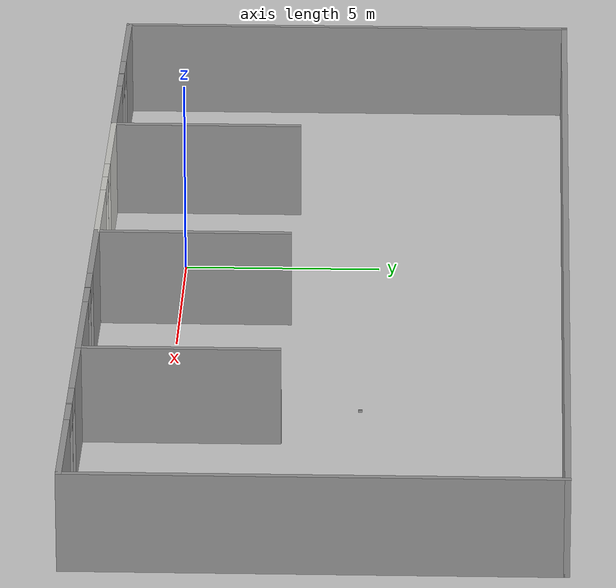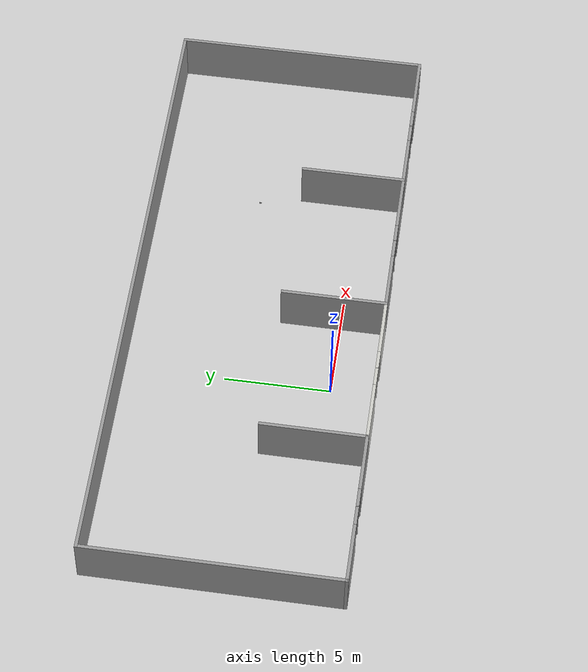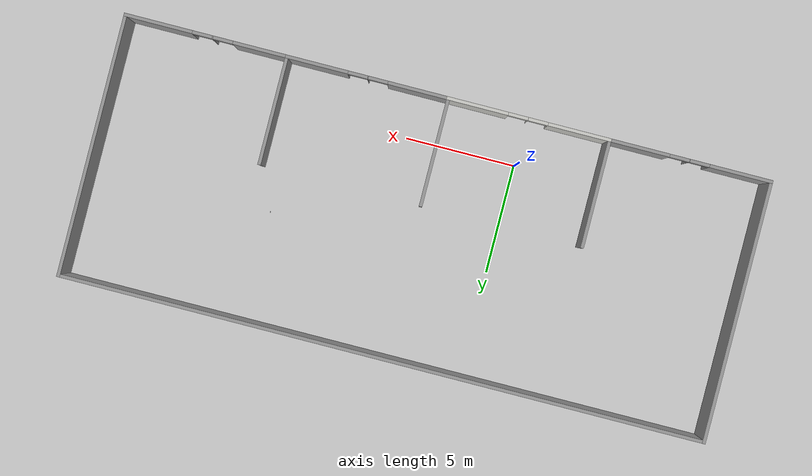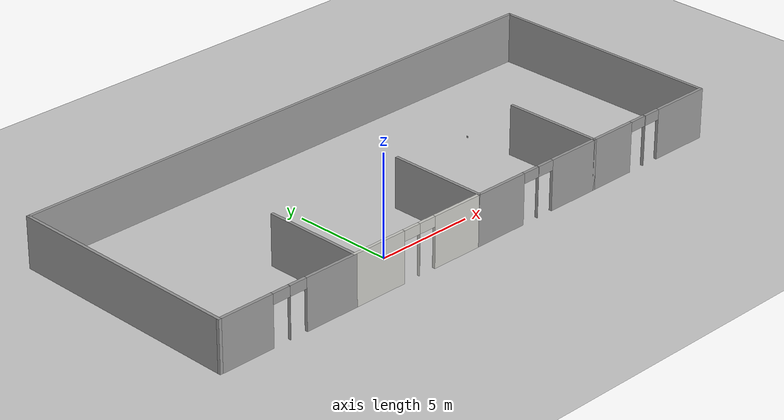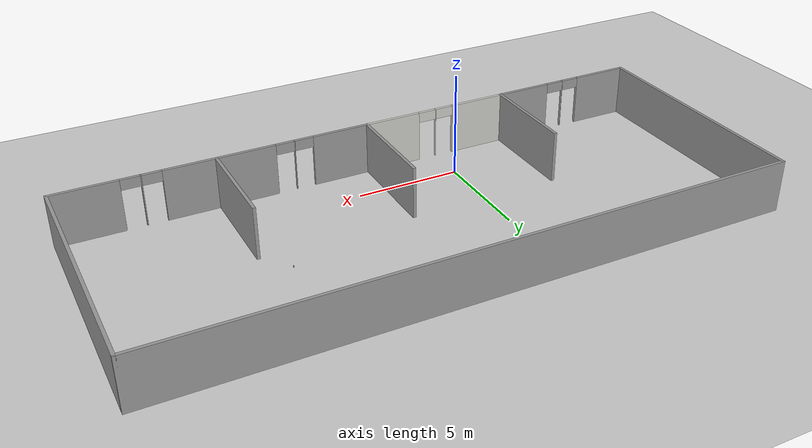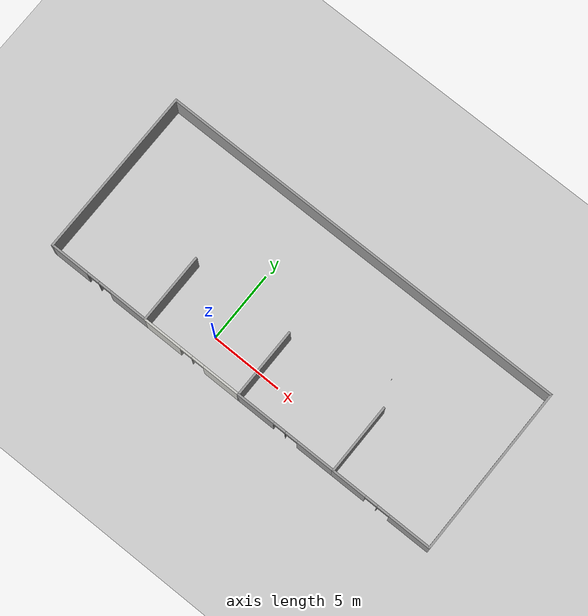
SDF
<sdf version="1.7">
 <world name="default">
  <light name="sun" type="directional">
   <pose>0 0 10 0 -0 0</pose>
   <diffuse>0.8 0.8 0.8 1</diffuse>
   <specular>0.2 0.2 0.2 1</specular>
   <attenuation>
    <range>1000</range>
    <constant>0.9</constant>
    <linear>0.01</linear>
    <quadratic>0.001</quadratic>
   </attenuation>
   <direction>-0.5 0.1 -0.9</direction>
   <spot><inner_angle>0</inner_angle><outer_angle>0</outer_angle><falloff>0</falloff></spot>
  </light>
  <model name="ground_plane">
   <static>1</static>
   <link name="link">
    <collision name="collision">
     <geometry><plane><normal>0 0 1</normal><size>100 100</size></plane></geometry>
     <surface><friction><ode><mu>100</mu><mu2>50</mu2></ode></friction></surface>
    </collision>
    <visual name="visual">
     <cast_shadows>0</cast_shadows>
     <geometry><plane><normal>0 0 1</normal><size>100 100</size></plane></geometry>
     <material>
      <script><uri>file://media/materials/scripts/gazebo.material</uri><name>Gazebo/Grey</name></script>
     </material>
    </visual>
   </link>
  </model>
  <gravity>0 0 -9.8</gravity>
  <magnetic_field>6e-06 2.3e-05 -4.2e-05</magnetic_field>
  <atmosphere type="adiabatic"/>
  <physics type="ode">
   <max_step_size>0.001</max_step_size>
   <real_time_factor>1</real_time_factor>
   <real_time_update_rate>1000</real_time_update_rate>
  </physics>
  <scene><ambient>0.4 0.4 0.4 1</ambient><background>0.7 0.7 0.7 1</background><shadows>1</shadows></scene>
  <spherical_coordinates>
   <surface_model>EARTH_WGS84</surface_model>
   <latitude_deg>0</latitude_deg>
   <longitude_deg>0</longitude_deg>
   <elevation>0</elevation>
   <heading_deg>0</heading_deg>
  </spherical_coordinates>
  <model name="gf_simulation">
   <pose>3.62768 3.86036 0 0 -0 0</pose>
   <link name="Wall_1">
    <pose>-3.675 -5.925 0 0 -0 0</pose>
    <visual name="Wall_1_Visual_0">
     <pose>-2.30795 0 1.25 0 -0 0</pose>
     <geometry><box><size>2.8841 0.15 2.5</size></box></geometry>
     <material>
      <script><uri>file://media/materials/scripts/gazebo.material</uri><name>Gazebo/CeilingTiled</name></script>
      <ambient>1 1 1 1</ambient>
     </material>
     <meta><layer>0</layer></meta>
    </visual>
    <collision name="Wall_1_Collision_0">
     <geometry><box><size>2.8841 0.15 2.5</size></box></geometry>
     <pose>-2.30795 0 1.25 0 -0 0</pose>
    </collision>
    <visual name="Wall_1_Visual_1">
     <pose>0.038466 0 1.25 0 -0 0</pose>
     <geometry><box><size>0.008729 0.15 2.5</size></box></geometry>
     <material>
      <script><uri>file://media/materials/scripts/gazebo.material</uri><name>Gazebo/CeilingTiled</name></script>
      <ambient>1 1 1 1</ambient>
     </material>
     <meta><layer>0</layer></meta>
    </visual>
    <collision name="Wall_1_Collision_1">
     <geometry><box><size>0.008729 0.15 2.5</size></box></geometry>
     <pose>0.038466 0 1.25 0 -0 0</pose>
    </collision>
    <visual name="Wall_1_Visual_2">
     <pose>2.34641 0 1.25 0 -0 0</pose>
     <geometry><box><size>2.80717 0.15 2.5</size></box></geometry>
     <material>
      <script><uri>file://media/materials/scripts/gazebo.material</uri><name>Gazebo/CeilingTiled</name></script>
      <ambient>1 1 1 1</ambient>
     </material>
     <meta><layer>0</layer></meta>
    </visual>
    <collision name="Wall_1_Collision_2">
     <geometry><box><size>2.80717 0.15 2.5</size></box></geometry>
     <pose>2.34641 0 1.25 0 -0 0</pose>
    </collision>
    <visual name="Wall_1_Visual_3">
     <pose>-0.415899 0 2.25 0 -0 0</pose>
     <geometry><box><size>0.9 0.15 0.5</size></box></geometry>
     <material>
      <script><uri>file://media/materials/scripts/gazebo.material</uri><name>Gazebo/CeilingTiled</name></script>
      <ambient>1 1 1 1</ambient>
     </material>
     <meta><layer>0</layer></meta>
    </visual>
    <collision name="Wall_1_Collision_3">
     <geometry><box><size>0.9 0.15 0.5</size></box></geometry>
     <pose>-0.415899 0 2.25 0 -0 0</pose>
    </collision>
    <visual name="Wall_1_Visual_4">
     <pose>0.49283 0 2.25 0 -0 0</pose>
     <geometry><box><size>0.9 0.15 0.5</size></box></geometry>
     <material>
      <script><uri>file://media/materials/scripts/gazebo.material</uri><name>Gazebo/CeilingTiled</name></script>
      <ambient>1 1 1 1</ambient>
     </material>
     <meta><layer>0</layer></meta>
    </visual>
    <collision name="Wall_1_Collision_4">
     <geometry><box><size>0.9 0.15 0.5</size></box></geometry>
     <pose>0.49283 0 2.25 0 -0 0</pose>
    </collision>
   </link>
   <link name="Wall_10">
    <pose>3.675 -5.925 0 0 -0 0</pose>
    <visual name="Wall_10_Visual_0">
     <pose>-2.33475 0 1.25 0 -0 0</pose>
     <geometry><box><size>2.83049 0.15 2.5</size></box></geometry>
     <material>
      <script><uri>file://media/materials/scripts/gazebo.material</uri><name>Gazebo/Grey</name></script>
      <ambient>1 1 1 1</ambient>
     </material>
     <meta><layer>0</layer></meta>
    </visual>
    <collision name="Wall_10_Collision_0">
     <geometry><box><size>2.83049 0.15 2.5</size></box></geometry>
     <pose>-2.33475 0 1.25 0 -0 0</pose>
    </collision>
    <visual name="Wall_10_Visual_1">
     <pose>-0.009967 0 1.25 0 -0 0</pose>
     <geometry><box><size>0.019079 0.15 2.5</size></box></geometry>
     <material>
      <script><uri>file://media/materials/scripts/gazebo.material</uri><name>Gazebo/Grey</name></script>
      <ambient>1 1 1 1</ambient>
     </material>
     <meta><layer>0</layer></meta>
    </visual>
    <collision name="Wall_10_Collision_1">
     <geometry><box><size>0.019079 0.15 2.5</size></box></geometry>
     <pose>-0.009967 0 1.25 0 -0 0</pose>
    </collision>
    <visual name="Wall_10_Visual_2">
     <pose>2.32479 0 1.25 0 -0 0</pose>
     <geometry><box><size>2.85043 0.15 2.5</size></box></geometry>
     <material>
      <script><uri>file://media/materials/scripts/gazebo.material</uri><name>Gazebo/Grey</name></script>
      <ambient>1 1 1 1</ambient>
     </material>
     <meta><layer>0</layer></meta>
    </visual>
    <collision name="Wall_10_Collision_2">
     <geometry><box><size>2.85043 0.15 2.5</size></box></geometry>
     <pose>2.32479 0 1.25 0 -0 0</pose>
    </collision>
    <visual name="Wall_10_Visual_3">
     <pose>-0.469506 0 2.25 0 -0 0</pose>
     <geometry><box><size>0.9 0.15 0.5</size></box></geometry>
     <material>
      <script><uri>file://media/materials/scripts/gazebo.material</uri><name>Gazebo/Grey</name></script>
      <ambient>1 1 1 1</ambient>
     </material>
     <meta><layer>0</layer></meta>
    </visual>
    <collision name="Wall_10_Collision_3">
     <geometry><box><size>0.9 0.15 0.5</size></box></geometry>
     <pose>-0.469506 0 2.25 0 -0 0</pose>
    </collision>
    <visual name="Wall_10_Visual_4">
     <pose>0.449573 0 2.25 0 -0 0</pose>
     <geometry><box><size>0.9 0.15 0.5</size></box></geometry>
     <material>
      <script><uri>file://media/materials/scripts/gazebo.material</uri><name>Gazebo/Grey</name></script>
      <ambient>1 1 1 1</ambient>
     </material>
     <meta><layer>0</layer></meta>
    </visual>
    <collision name="Wall_10_Collision_4">
     <geometry><box><size>0.9 0.15 0.5</size></box></geometry>
     <pose>0.449573 0 2.25 0 -0 0</pose>
    </collision>
   </link>
   <link name="Wall_13">
    <collision name="Wall_13_Collision">
     <geometry><box><size>5 0.15 2.5</size></box></geometry>
     <pose>0 0 1.25 0 -0 0</pose>
    </collision>
    <visual name="Wall_13_Visual">
     <pose>0 0 1.25 0 -0 0</pose>
     <geometry><box><size>5 0.15 2.5</size></box></geometry>
     <material>
      <script><uri>file://media/materials/scripts/gazebo.material</uri><name>Gazebo/Grey</name></script>
      <ambient>1 1 1 1</ambient>
     </material>
     <meta><layer>0</layer></meta>
    </visual>
    <pose>7.35 -3.5 0 0 -0 1.5708</pose>
   </link>
   <link name="Wall_16">
    <pose>11.025 -5.925 0 0 -0 0</pose>
    <visual name="Wall_16_Visual_0">
     <pose>-2.47856 0 1.25 0 -0 0</pose>
     <geometry><box><size>2.54289 0.15 2.5</size></box></geometry>
     <material>
      <script><uri>file://media/materials/scripts/gazebo.material</uri><name>Gazebo/Grey</name></script>
      <ambient>1 1 1 1</ambient>
     </material>
     <meta><layer>0</layer></meta>
    </visual>
    <collision name="Wall_16_Collision_0">
     <geometry><box><size>2.54289 0.15 2.5</size></box></geometry>
     <pose>-2.47856 0 1.25 0 -0 0</pose>
    </collision>
    <visual name="Wall_16_Visual_1">
     <pose>-0.285478 0 1.25 0 -0 0</pose>
     <geometry><box><size>0.043266 0.15 2.5</size></box></geometry>
     <material>
      <script><uri>file://media/materials/scripts/gazebo.material</uri><name>Gazebo/Grey</name></script>
      <ambient>1 1 1 1</ambient>
     </material>
     <meta><layer>0</layer></meta>
    </visual>
    <collision name="Wall_16_Collision_1">
     <geometry><box><size>0.043266 0.15 2.5</size></box></geometry>
     <pose>-0.285478 0 1.25 0 -0 0</pose>
    </collision>
    <visual name="Wall_16_Visual_2">
     <pose>2.19308 0 1.25 0 -0 0</pose>
     <geometry><box><size>3.11384 0.15 2.5</size></box></geometry>
     <material>
      <script><uri>file://media/materials/scripts/gazebo.material</uri><name>Gazebo/Grey</name></script>
      <ambient>1 1 1 1</ambient>
     </material>
     <meta><layer>0</layer></meta>
    </visual>
    <collision name="Wall_16_Collision_2">
     <geometry><box><size>3.11384 0.15 2.5</size></box></geometry>
     <pose>2.19308 0 1.25 0 -0 0</pose>
    </collision>
    <visual name="Wall_16_Visual_3">
     <pose>-0.757111 0 2.25 0 -0 0</pose>
     <geometry><box><size>0.9 0.15 0.5</size></box></geometry>
     <material>
      <script><uri>file://media/materials/scripts/gazebo.material</uri><name>Gazebo/Grey</name></script>
      <ambient>1 1 1 1</ambient>
     </material>
     <meta><layer>0</layer></meta>
    </visual>
    <collision name="Wall_16_Collision_3">
     <geometry><box><size>0.9 0.15 0.5</size></box></geometry>
     <pose>-0.757111 0 2.25 0 -0 0</pose>
    </collision>
    <visual name="Wall_16_Visual_4">
     <pose>0.186155 0 2.25 0 -0 0</pose>
     <geometry><box><size>0.9 0.15 0.5</size></box></geometry>
     <material>
      <script><uri>file://media/materials/scripts/gazebo.material</uri><name>Gazebo/Grey</name></script>
      <ambient>1 1 1 1</ambient>
     </material>
     <meta><layer>0</layer></meta>
    </visual>
    <collision name="Wall_16_Collision_4">
     <geometry><box><size>0.9 0.15 0.5</size></box></geometry>
     <pose>0.186155 0 2.25 0 -0 0</pose>
    </collision>
   </link>
   <link name="Wall_20">
    <collision name="Wall_20_Collision">
     <geometry><box><size>12 0.15 2.5</size></box></geometry>
     <pose>0 0 1.25 0 -0 0</pose>
    </collision>
    <visual name="Wall_20_Visual">
     <pose>0 0 1.25 0 -0 0</pose>
     <geometry><box><size>12 0.15 2.5</size></box></geometry>
     <material>
      <script><uri>file://media/materials/scripts/gazebo.material</uri><name>Gazebo/Grey</name></script>
      <ambient>1 1 1 1</ambient>
     </material>
     <meta><layer>0</layer></meta>
    </visual>
    <pose>14.7 0 0 0 -0 1.5708</pose>
   </link>
   <link name="Wall_22">
    <pose>-11.025 -5.925 0 0 -0 3.14159</pose>
    <visual name="Wall_22_Visual_0">
     <pose>-2.34634 0 1.25 0 -0 0</pose>
     <geometry><box><size>2.80732 0.15 2.5</size></box></geometry>
     <material>
      <script><uri>file://media/materials/scripts/gazebo.material</uri><name>Gazebo/Grey</name></script>
      <ambient>1 1 1 1</ambient>
     </material>
     <meta><layer>0</layer></meta>
    </visual>
    <collision name="Wall_22_Collision_0">
     <geometry><box><size>2.80732 0.15 2.5</size></box></geometry>
     <pose>-2.34634 0 1.25 0 -0 0</pose>
    </collision>
    <visual name="Wall_22_Visual_1">
     <pose>-0.033144 0 1.25 0 -0 0</pose>
     <geometry><box><size>0.019079 0.15 2.5</size></box></geometry>
     <material>
      <script><uri>file://media/materials/scripts/gazebo.material</uri><name>Gazebo/Grey</name></script>
      <ambient>1 1 1 1</ambient>
     </material>
     <meta><layer>0</layer></meta>
    </visual>
    <collision name="Wall_22_Collision_1">
     <geometry><box><size>0.019079 0.15 2.5</size></box></geometry>
     <pose>-0.033144 0 1.25 0 -0 0</pose>
    </collision>
    <visual name="Wall_22_Visual_2">
     <pose>2.3132 0 1.25 0 -0 0</pose>
     <geometry><box><size>2.8736 0.15 2.5</size></box></geometry>
     <material>
      <script><uri>file://media/materials/scripts/gazebo.material</uri><name>Gazebo/Grey</name></script>
      <ambient>1 1 1 1</ambient>
     </material>
     <meta><layer>0</layer></meta>
    </visual>
    <collision name="Wall_22_Collision_2">
     <geometry><box><size>2.8736 0.15 2.5</size></box></geometry>
     <pose>2.3132 0 1.25 0 -0 0</pose>
    </collision>
    <visual name="Wall_22_Visual_3">
     <pose>-0.492683 0 2.25 0 -0 0</pose>
     <geometry><box><size>0.9 0.15 0.5</size></box></geometry>
     <material>
      <script><uri>file://media/materials/scripts/gazebo.material</uri><name>Gazebo/Grey</name></script>
      <ambient>1 1 1 1</ambient>
     </material>
     <meta><layer>0</layer></meta>
    </visual>
    <collision name="Wall_22_Collision_3">
     <geometry><box><size>0.9 0.15 0.5</size></box></geometry>
     <pose>-0.492683 0 2.25 0 -0 0</pose>
    </collision>
    <visual name="Wall_22_Visual_4">
     <pose>0.426395 0 2.25 0 -0 0</pose>
     <geometry><box><size>0.9 0.15 0.5</size></box></geometry>
     <material>
      <script><uri>file://media/materials/scripts/gazebo.material</uri><name>Gazebo/Grey</name></script>
      <ambient>1 1 1 1</ambient>
     </material>
     <meta><layer>0</layer></meta>
    </visual>
    <collision name="Wall_22_Collision_4">
     <geometry><box><size>0.9 0.15 0.5</size></box></geometry>
     <pose>0.426395 0 2.25 0 -0 0</pose>
    </collision>
   </link>
   <link name="Wall_23">
    <collision name="Wall_23_Collision">
     <geometry><box><size>12 0.15 2.5</size></box></geometry>
     <pose>0 0 1.25 0 -0 0</pose>
    </collision>
    <visual name="Wall_23_Visual">
     <pose>0 0 1.25 0 -0 0</pose>
     <geometry><box><size>12 0.15 2.5</size></box></geometry>
     <material>
      <script><uri>file://media/materials/scripts/gazebo.material</uri><name>Gazebo/Grey</name></script>
      <ambient>1 1 1 1</ambient>
     </material>
     <meta><layer>0</layer></meta>
    </visual>
    <pose>-14.7 0 0 0 -0 1.5708</pose>
   </link>
   <link name="Wall_24">
    <collision name="Wall_24_Collision">
     <geometry><box><size>29.55 0.15 2.5</size></box></geometry>
     <pose>0 0 1.25 0 -0 0</pose>
    </collision>
    <visual name="Wall_24_Visual">
     <pose>0 0 1.25 0 -0 0</pose>
     <geometry><box><size>29.55 0.15 2.5</size></box></geometry>
     <material>
      <script><uri>file://media/materials/scripts/gazebo.material</uri><name>Gazebo/Grey</name></script>
      <ambient>1 1 1 1</ambient>
     </material>
     <meta><layer>0</layer></meta>
    </visual>
    <pose>0 5.925 0 0 -0 0</pose>
   </link>
   <link name="Wall_3">
    <collision name="Wall_3_Collision">
     <geometry><box><size>5 0.15 2.5</size></box></geometry>
     <pose>0 0 1.25 0 -0 0</pose>
    </collision>
    <visual name="Wall_3_Visual">
     <pose>0 0 1.25 0 -0 0</pose>
     <geometry><box><size>5 0.15 2.5</size></box></geometry>
     <material>
      <script><uri>file://media/materials/scripts/gazebo.material</uri><name>Gazebo/Grey</name></script>
      <ambient>1 1 1 1</ambient>
     </material>
     <meta><layer>0</layer></meta>
    </visual>
    <pose>0 -3.5 0 0 -0 1.5708</pose>
   </link>
   <link name="Wall_7">
    <collision name="Wall_7_Collision">
     <geometry><box><size>5 0.15 2.5</size></box></geometry>
     <pose>0 0 1.25 0 -0 0</pose>
    </collision>
    <visual name="Wall_7_Visual">
     <pose>0 0 1.25 0 -0 0</pose>
     <geometry><box><size>5 0.15 2.5</size></box></geometry>
     <material>
      <script><uri>file://media/materials/scripts/gazebo.material</uri><name>Gazebo/Grey</name></script>
      <ambient>1 1 1 1</ambient>
     </material>
     <meta><layer>0</layer></meta>
    </visual>
    <pose>-7.35 -3.5 0 0 -0 1.5708</pose>
   </link>
   <static>1</static>
  </model>
  <model name="unit_box">
   <pose>10.128 4.76515 0.5 0 -0 0</pose>
   <link name="link">
    <inertial>
     <mass>1</mass>
     <inertia>
      <ixx>0.166667</ixx>
      <ixy>0</ixy>
      <ixz>0</ixz>
      <iyy>0.166667</iyy>
      <iyz>0</iyz>
      <izz>0.166667</izz>
     </inertia>
    </inertial>
    <collision name="collision">
     <geometry><box><size>0.0171606 0.089537 0.071914</size></box></geometry>
    </collision>
    <visual name="visual">
     <geometry><box><size>0.0171606 0.089537 0.071914</size></box></geometry>
     <material>
      <script><name>Gazebo/Grey</name><uri>file://media/materials/scripts/gazebo.material</uri></script>
     </material>
    </visual>
   </link>
  </model>
 </world>
</sdf>
